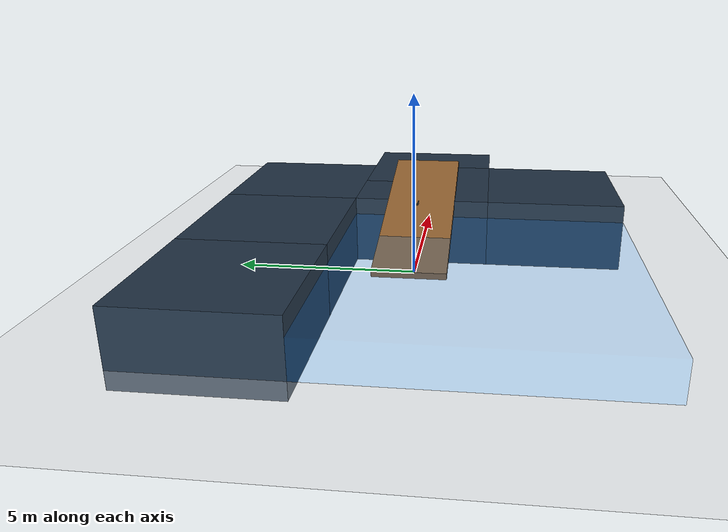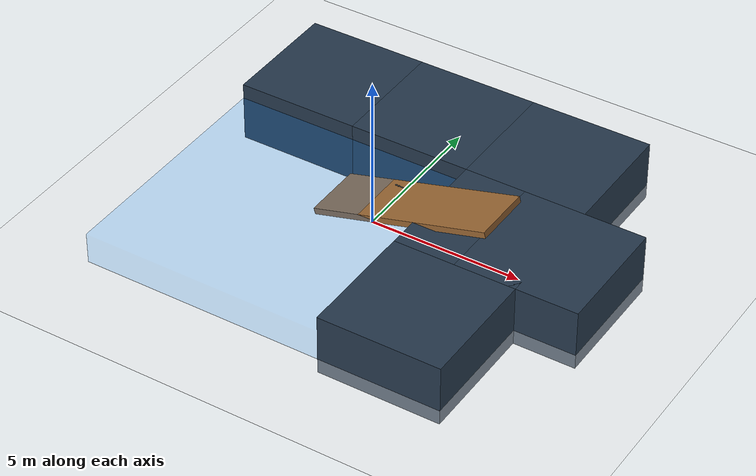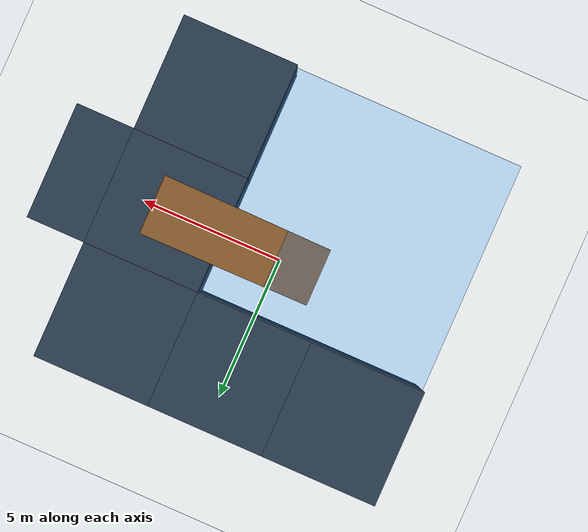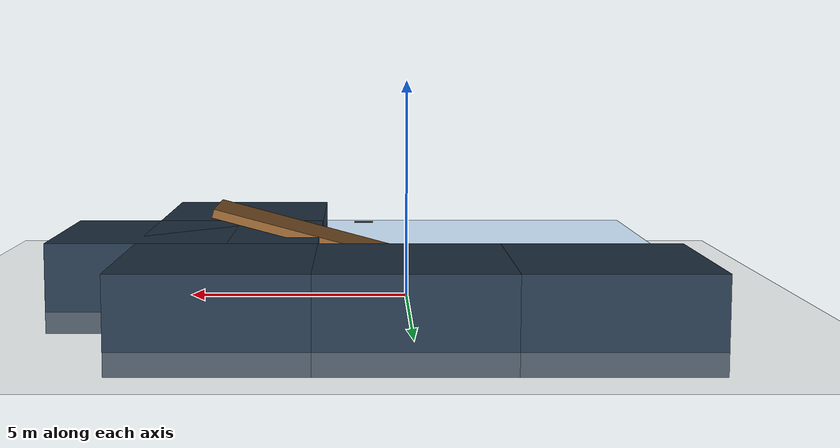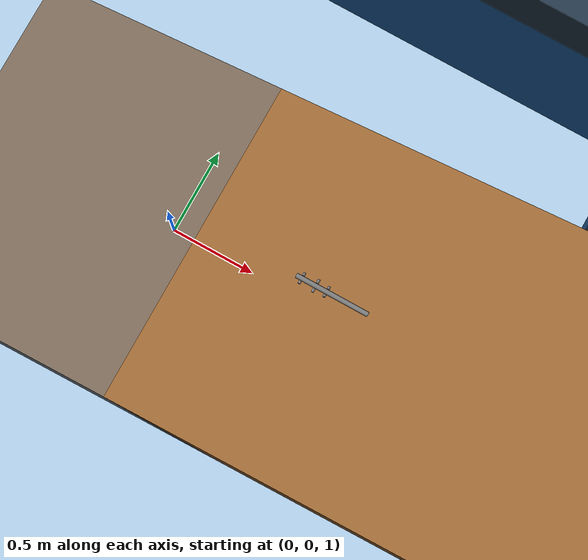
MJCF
<mujoco>
    <compiler meshdir="asset" texturedir="asset" />
    <statistic extent="1.5" meansize=".05" />
    <option timestep="0.005"  integrator="implicitfast"/>

    <!-- Float -->

    <visual>
        <rgba haze="1 1 1 1.0" />

        <quality shadowsize="4096" />
        <map stiffness="700" shadowscale="0.5" fogstart="10" fogend="15" zfar="40" haze="0.3" />
    </visual>

    <asset>
        <texture type="skybox" builtin="gradient" rgb1="0.3 0.5 0.7" rgb2="0 0 0" width="512"
            height="512" />
        <texture name="texplane" type="2d" builtin="checker" rgb1=".2 .3 .4" rgb2=".1 0.15 0.2"
            width="512" height="512" mark="cross" markrgb=".8 .8 .8" />
        <material name="matplane" reflectance="0.3" texture="texplane" texrepeat="1 1"
            texuniform="true" />
    </asset>

    <worldbody>

        <!-- Stick Insect Robot -->
        <body name="stick_insect_robot" pos="1.0 0 1.5">
            <freejoint name="space" />  comment to fixed the robot on the air
            <inertial pos="0.004237 -0.007339 0" mass="0.253323"
                diaginertia="0.01521 0.01521 9.453e-05" />

            <geom name="Stick_insect" size="0.01375 0.21325" pos="0 0 0.225002"
                quat="-0.5 -0.5 0.5 0.5"
                type="cylinder" contype="1" conaffinity="1" />

            <body name="COXA_R0" pos="-0.17975 0.014997 0.225" quat="0.258819 2.51884e-07 2.70831e-07 0.965926">
                <inertial pos="0.004237 -0.007339 0" mass="0.1"
                    diaginertia="0.00128 0.00128 0.00064" />
                <joint name="TR0" pos="0 0 0" axis="0 0 1"
                    actuatorfrcrange="-6e+09 6e+09" damping="0.5"/>
                <geom name="COXA_R0" size="0.0075 0.008475" pos="0.004237 -0.007339 0"
                    quat="0.683005 0.68302 0.183015 0.18301" type="cylinder" contype="0"
                    conaffinity="0" />

            </body>

            <body name="COXA_L0" pos="-0.17975 -0.015004 0.225" quat="-0.000166961 -0.258819 0.965926 4.48143e-05">
                <inertial pos="0.004238 -0.00734 0" mass="0.1" diaginertia="0.00128 0.00128 0.00064" />
                <joint name="TL0" pos="0 0 0" axis="0 0 1"
                    actuatorfrcrange="-6e+09 6e+09" damping="0.5"/>
                <geom name="COXA_L0" size="0.0075 0.008475" pos="0.004238 -0.00734 0"
                    quat="-0.183013 -0.183013 0.683013 0.683013" type="cylinder" contype="0"
                    conaffinity="0" />

            </body>

            <body name="COXA_R1" pos="-0.09725 0.014998 0.225" quat="0 1.73205e-07 3.26795e-07 1">
                <inertial pos="0 -0.01115 0" mass="0.1" diaginertia="0.00128 0.00128 0.00064" />
                <joint name="TR1" pos="0 0 0" axis="0 0 1"
                    actuatorfrcrange="-6e+09 6e+09" damping="0.5"/>
                <geom name="COXA_R1" size="0.0075 0.01115" pos="0 -0.01115 0"
                    quat="0.7071 0.707114 1.08608e-07 3.53552e-07" type="cylinder" contype="0"
                    conaffinity="0" />

            </body>

            <body name="COXA_L1" pos="-0.097249 -0.015002 0.225"
                quat="5e-07 1 3.26795e-07 -3.26795e-07">
                <inertial pos="0 0.01115 0" mass="0.1" diaginertia="0.00128 0.00128 0.00064" />
                <joint name="TL1" pos="0 0 0" axis="0 0 1"
                    actuatorfrcrange="-6e+09 6e+09" damping="0.5"/>
                <geom name="COXA_L1" size="0.0075 0.01115" pos="0 0.01115 0"
                    quat="0.707107 0.707107 -2.44949e-07 0" type="cylinder" contype="0"
                    conaffinity="0" />

            </body>

            <body name="COXA_R2" pos="-0.032748 0.014996 0.224999"
                quat="-0.340226 5.16883e-08 3.66228e-07 0.940344">
                <inertial pos="-0.004934 -0.005879 0" mass="0.1"
                    diaginertia="0.00128 0.00128 0.00064" />
                <joint name="TR2" pos="0 0 0" axis="0 0 1"
                    actuatorfrcrange="-6e+09 6e+09" damping="0.5"/>
                <geom name="COXA_R2" size="0.0075 0.007675" pos="-0.004934 -0.005879 0"
                    quat="-0.664457 -0.664469 0.241847 0.241842" type="cylinder" contype="0"
                    conaffinity="0" />

            </body>

            <body name="COXA_L2" pos="-0.032749 -0.015004 0.225"
                quat="-5.29069e-07 -0.939038 0.343813 9.26051e-09">
                <inertial pos="0.004934 0.005879 0" mass="0.1" diaginertia="0.00128 0.00128 0.00064" />
                <joint name="TL2" pos="0 0 0" axis="0 0 1"
                    actuatorfrcrange="-6e+09 6e+09" damping="0.5"/>
                <geom name="COXA_L2" size="0.0075 0.007675" pos="0.004934 0.005879 0"
                    quat="-0.664453 -0.664473 0.241849 0.241841" type="cylinder" contype="0"
                    conaffinity="0" />

            </body>
        </body>

        <!-- Water Space -->
        <geom name="water_space" type="box" size="4 4 1" pos="-2 -2 0.0"
            rgba="0 0.5 1 0.2" conaffinity="0" contype="0"/>

        <!-- Environment Ground -->

        <geom name="ground_1" type="box" size="2 2 1" pos="4 0 0.5" quat="1 0 0 0" material="matplane"
            condim="1" friction="1.5 0.005 0.0001" contype="1"/>
        <geom name="ground_3" type="box" size="2 2 1" pos="0 4 0.5" quat="1 0 0 0" material="matplane"
            condim="1" friction="1.5 0.005 0.0001"/>

        <geom name="ground_5" type="box" size="2 2 1" pos="4 4 0.5" quat="1 0 0 0" material="matplane"
            condim="1" friction="1.5 0.005 0.0001"/>
        <geom name="ground_6" type="box" size="2 2 1" pos="-4 4 0.5" quat="1 0 0 0" material="matplane"
            condim="1" friction="1.5 0.005 0.0001"/>
        <geom name="ground_7" type="box" size="2 2 1" pos="4 -4 0.5" quat="1 0 0 0" material="matplane"
            condim="1" friction="1.5 0.005 0.0001"/>
        <geom name="ground_9" type="box" size="2 2 1" pos="6 0 0.5" quat="1 0 0 0" material="matplane"
            condim="1" friction="1.5 0.005 0.0001"/>

        <geom name="ground" type="plane" size="0 0 1" pos="0 0 0" quat="1 0 0 0"
            condim="1" friction="1.5 0.005 0.0001" rgba="1 1 1 1"/>

        <geom name="ramp" type="box" size="3.0 1.0 0.1" pos="1.5 0 1.265" euler="0 -15 0"
                rgba="0.6 0.4 0.2 1" friction="1.5 0.005 0.0001"/>

        <!-- Light settings -->
        <light directional="true" diffuse=".4 .4 .4" specular="0.1 0.1 0.1" pos="0 0 5.0"
            dir="0 0 -1" castshadow="false" />
        <light directional="true" diffuse=".6 .6 .6" specular="0.2 0.2 0.2" pos="0 0 4" dir="0 0 -1" />

    </worldbody>

    <actuator>
        <motor name="TR0" joint="TR0" ctrllimited="true" ctrlrange="-10 10"/>

        <motor name="TR1" joint="TR1" ctrllimited="true" ctrlrange="-10 10"/>

        <motor name="TR2" joint="TR2" ctrllimited="true" ctrlrange="-10 10"/>

        <motor name="TL0" joint="TL0" ctrllimited="true" ctrlrange="-10 10"/>

        <motor name="TL1" joint="TL1" ctrllimited="true" ctrlrange="-10 10"/>

        <motor name="TL2" joint="TL2" ctrllimited="true" ctrlrange="-10 10"/>
    </actuator>
</mujoco>
